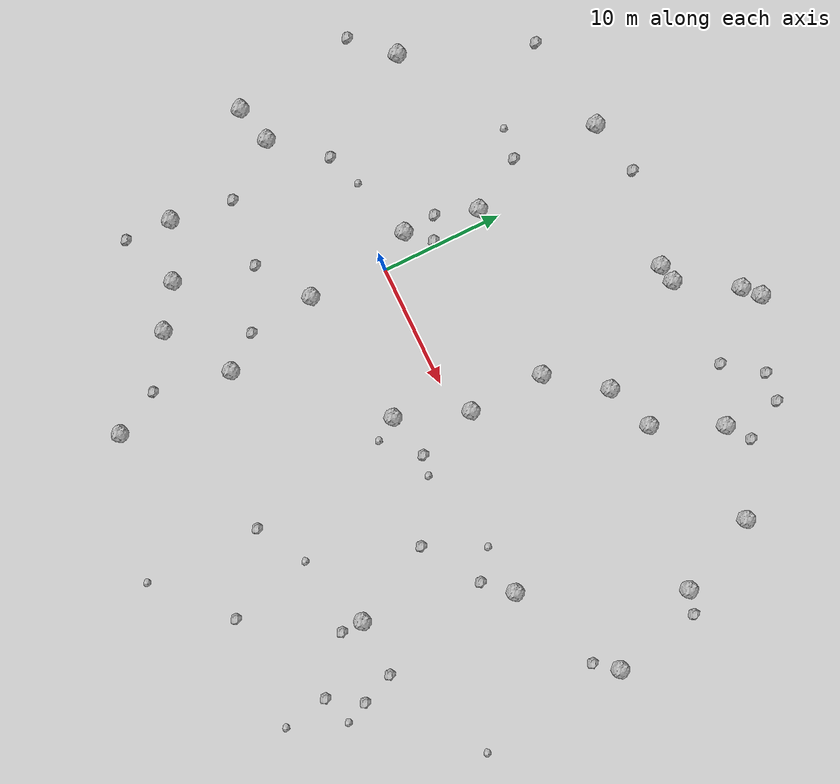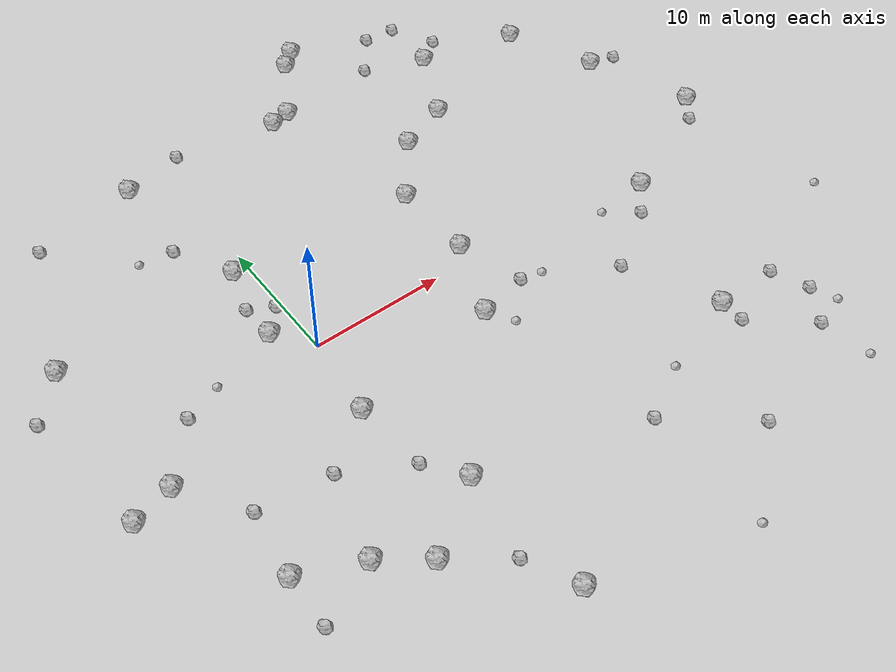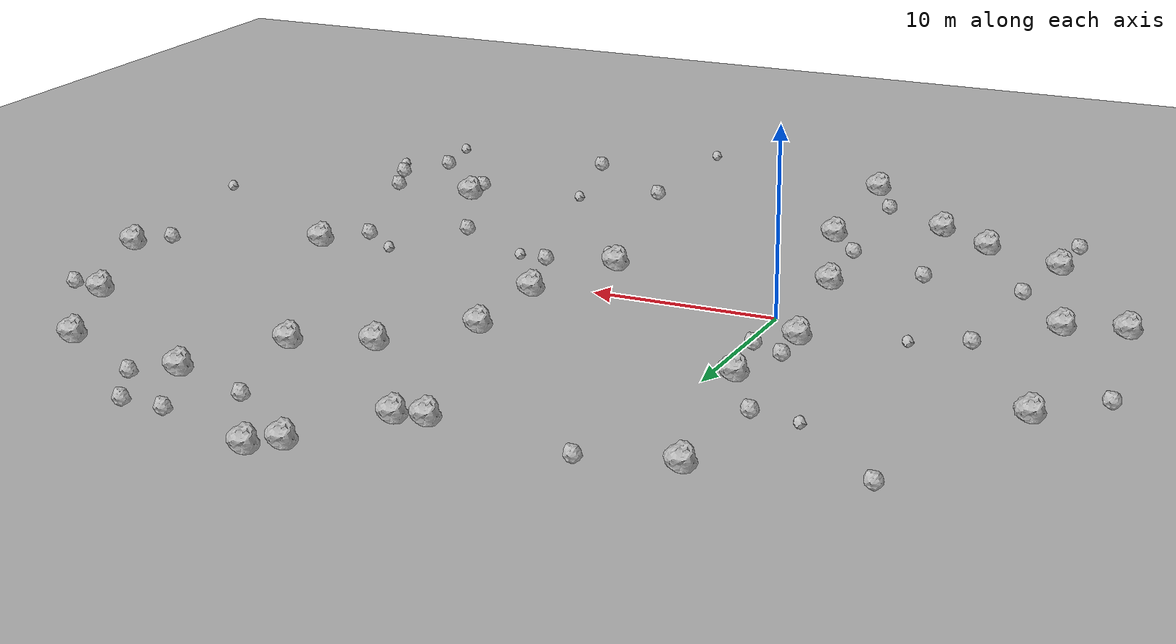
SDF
<sdf version="1.6">
 <world name="default">
  <include><uri>model://custom_ground</uri></include>
  <include><uri>model://sun</uri></include>
  <model name="rock1_0_0">
   <include><uri>model://rock1</uri><pose>10.821940397045196 -4.523592340949065 0.5 0 0 0</pose></include>
  </model>
  <model name="rock1_0_1">
   <include><uri>model://rock1</uri><pose>-3.2612408736402863 -17.877055829082632 0.5 0 0 0</pose></include>
  </model>
  <model name="rock1_0_2">
   <include><uri>model://rock1</uri><pose>20.236968406302218 13.408503228176016 0.5 0 0 0</pose></include>
  </model>
  <model name="rock1_0_3">
   <include><uri>model://rock1</uri><pose>13.055684413217122 1.251064031974046 0.5 0 0 0</pose></include>
  </model>
  <model name="rock1_0_4">
   <include><uri>model://rock1</uri><pose>-14.993761156548043 8.35029182055132 0.5 0 0 0</pose></include>
  </model>
  <model name="rock1_0_5">
   <include><uri>model://rock1</uri><pose>22.893345178660446 18.857827854576698 0.5 0 0 0</pose></include>
  </model>
  <model name="rock1_0_6">
   <include><uri>model://rock1</uri><pose>-16.49643778831015 -4.786456749395558 0.5 0 0 0</pose></include>
  </model>
  <model name="rock1_0_7">
   <include><uri>model://rock1</uri><pose>27.428805030857156 -1.8469164987717654 0.5 0 0 0</pose></include>
  </model>
  <model name="rock1_0_8">
   <include><uri>model://rock1</uri><pose>30.23622032656735 17.038255822152195 0.5 0 0 0</pose></include>
  </model>
  <model name="rock1_0_9">
   <include><uri>model://rock1</uri><pose>9.271307849004444 19.789888029220357 0.5 0 0 0</pose></include>
  </model>
  <model name="rock1_0_10">
   <include><uri>model://rock1</uri><pose>-13.399878486173494 -3.965482055158926 0.5 0 0 0</pose></include>
  </model>
  <model name="rock1_0_11">
   <include><uri>model://rock1</uri><pose>-2.0094451745667463 2.6641377313370356 0.5 0 0 0</pose></include>
  </model>
  <model name="rock1_0_12">
   <include><uri>model://rock1</uri><pose>14.844141967051776 25.91319315444226 0.5 0 0 0</pose></include>
  </model>
  <model name="rock1_0_13">
   <include><uri>model://rock1</uri><pose>16.30258723649783 11.911439262818696 0.5 0 0 0</pose></include>
  </model>
  <model name="rock1_0_14">
   <include><uri>model://rock1</uri><pose>-10.96123594212285 -13.592383131722528 0.5 0 0 0</pose></include>
  </model>
  <model name="rock1_0_15">
   <include><uri>model://rock1</uri><pose>2.5782642925681003 -24.47634214251631 0.5 0 0 0</pose></include>
  </model>
  <model name="rock1_0_16">
   <include><uri>model://rock1</uri><pose>13.62231153825946 24.772420155391117 0.5 0 0 0</pose></include>
  </model>
  <model name="rock1_0_17">
   <include><uri>model://rock1</uri><pose>-6.485202266334738 -15.522939422022354 0.5 0 0 0</pose></include>
  </model>
  <model name="rock1_0_18">
   <include><uri>model://rock1</uri><pose>33.22430456099622 10.549350398413331 0.5 0 0 0</pose></include>
  </model>
  <model name="rock1_0_19">
   <include><uri>model://rock1</uri><pose>1.926757771120748 -14.44521124996305 0.5 0 0 0</pose></include>
  </model>
  <model name="rock1_0_20">
   <include><uri>model://rock1</uri><pose>24.23321447496639 -13.671661066058753 0.5 0 0 0</pose></include>
  </model>
  <model name="rock1_0_21">
   <include><uri>model://rock1</uri><pose>-0.6063811236792667 -6.210338863403674 0.5 0 0 0</pose></include>
  </model>
  <model name="rock1_0_22">
   <include><uri>model://rock1</uri><pose>-3.057630912245429 20.08588613857522 0.5 0 0 0</pose></include>
  </model>
  <model name="rock1_0_23">
   <include><uri>model://rock1</uri><pose>10.778273023344632 20.104986298174893 0.5 0 0 0</pose></include>
  </model>
  <model name="rock1_0_24">
   <include><uri>model://rock1</uri><pose>12.91419316591329 7.546934526845838 0.5 0 0 0</pose></include>
  </model>
  <model name="rock1_0_25">
   <include><uri>model://rock1</uri><pose>36.48425089388974 2.9341699619062283 0.5 0 0 0</pose></include>
  </model>
  <model name="rock1_0_26">
   <include><uri>model://rock1</uri><pose>-1.070327424108413 8.771474004652525 0.5 0 0 0</pose></include>
  </model>
  <model name="rock2_0_0">
   <include><uri>model://rock2</uri><pose>-11.100777580453267 18.68692077397595 0.3 0 0 0</pose></include>
  </model>
  <model name="rock2_0_1">
   <include><uri>model://rock2</uri><pose>24.284246529631993 -15.50590167762884 0.3 0 0 0</pose></include>
  </model>
  <model name="rock2_0_2">
   <include><uri>model://rock2</uri><pose>-0.1229574149473791 -11.676853589150621 0.3 0 0 0</pose></include>
  </model>
  <model name="rock2_0_3">
   <include><uri>model://rock2</uri><pose>19.70893785184542 -22.58963252696951 0.3 0 0 0</pose></include>
  </model>
  <model name="rock2_0_4">
   <include><uri>model://rock2</uri><pose>28.40204740845686 -18.947165313035512 0.3 0 0 0</pose></include>
  </model>
  <model name="rock2_0_5">
   <include><uri>model://rock2</uri><pose>-0.42238981190447333 4.475533588720168 0.3 0 0 0</pose></include>
  </model>
  <model name="rock2_0_6">
   <include><uri>model://rock2</uri><pose>14.524118540050296 -3.6676030570950644 0.3 0 0 0</pose></include>
  </model>
  <model name="rock2_0_7">
   <include><uri>model://rock2</uri><pose>24.694777346149237 20.227979092687782 0.3 0 0 0</pose></include>
  </model>
  <model name="rock2_0_8">
   <include><uri>model://rock2</uri><pose>14.02107016862658 -17.991570410969047 0.3 0 0 0</pose></include>
  </model>
  <model name="rock2_0_9">
   <include><uri>model://rock2</uri><pose>35.12982947613083 10.073821226563695 0.3 0 0 0</pose></include>
  </model>
  <model name="rock2_0_10">
   <include><uri>model://rock2</uri><pose>-11.11831359696945 -17.454144920927696 0.3 0 0 0</pose></include>
  </model>
  <model name="rock2_0_11">
   <include><uri>model://rock2</uri><pose>-4.83486660691225 -9.103818379895387 0.3 0 0 0</pose></include>
  </model>
  <model name="rock2_0_12">
   <include><uri>model://rock2</uri><pose>1.456762340356498 21.164740214981585 0.3 0 0 0</pose></include>
  </model>
  <model name="rock2_0_13">
   <include><uri>model://rock2</uri><pose>22.890488084798378 23.395814532811507 0.3 0 0 0</pose></include>
  </model>
  <model name="rock2_0_14">
   <include><uri>model://rock2</uri><pose>20.93408075718132 -6.95670406874633 0.3 0 0 0</pose></include>
  </model>
  <model name="rock2_0_15">
   <include><uri>model://rock2</uri><pose>-17.99418645703656 5.338835887511522 0.3 0 0 0</pose></include>
  </model>
  <model name="rock2_0_16">
   <include><uri>model://rock2</uri><pose>28.94393933002837 -13.570474452881985 0.3 0 0 0</pose></include>
  </model>
  <model name="rock2_0_17">
   <include><uri>model://rock2</uri><pose>20.508117045433238 23.598601458643635 0.3 0 0 0</pose></include>
  </model>
  <model name="rock2_0_18">
   <include><uri>model://rock2</uri><pose>-9.99749460904918 0.003385052644336639 0.3 0 0 0</pose></include>
  </model>
  <model name="rock2_0_19">
   <include><uri>model://rock2</uri><pose>-2.221349582493527 5.4332307687127255 0.3 0 0 0</pose></include>
  </model>
  <model name="rock2_0_20">
   <include><uri>model://rock2</uri><pose>25.516365423611937 -3.961672037085439 0.3 0 0 0</pose></include>
  </model>
  <model name="rock2_0_21">
   <include><uri>model://rock2</uri><pose>30.066282157324835 -16.27242106847402 0.3 0 0 0</pose></include>
  </model>
  <model name="rock2_0_22">
   <include><uri>model://rock2</uri><pose>0.6948006825252477 -20.728045821858828 0.3 0 0 0</pose></include>
  </model>
  <model name="rock2_0_23">
   <include><uri>model://rock2</uri><pose>18.288720072384294 20.662845561977413 0.3 0 0 0</pose></include>
  </model>
  <model name="rock2_0_24">
   <include><uri>model://rock2</uri><pose>-3.512811776391864 13.07273586167085 0.3 0 0 0</pose></include>
  </model>
  <model name="rock2_0_25">
   <include><uri>model://rock2</uri><pose>-10.30639033041444 -8.468821826699852 0.3 0 0 0</pose></include>
  </model>
  <model name="rock2_0_26">
   <include><uri>model://rock2</uri><pose>35.098928516886154 1.1962896216791954 0.3 0 0 0</pose></include>
  </model>
  <model name="rock3_0_0">
   <include><uri>model://rock3</uri><pose>14.063888080929665 -27.713126321143257 0.2 0 0 0</pose></include>
  </model>
  <model name="rock3_0_1">
   <include><uri>model://rock3</uri><pose>-3.4006684733511214 -17.73215396875679 0.2 0 0 0</pose></include>
  </model>
  <model name="rock3_0_2">
   <include><uri>model://rock3</uri><pose>16.170575595316578 -4.038658240653334 0.2 0 0 0</pose></include>
  </model>
  <model name="rock3_0_3">
   <include><uri>model://rock3</uri><pose>-7.171433113908153 1.0318849061043736 0.2 0 0 0</pose></include>
  </model>
  <model name="rock3_0_4">
   <include><uri>model://rock3</uri><pose>30.899966138777103 -18.169410742821878 0.2 0 0 0</pose></include>
  </model>
  <model name="rock3_0_5">
   <include><uri>model://rock3</uri><pose>-6.045631681822741 13.400515126239199 0.2 0 0 0</pose></include>
  </model>
  <model name="rock3_0_6">
   <include><uri>model://rock3</uri><pose>23.27176516290787 -2.248546880817244 0.2 0 0 0</pose></include>
  </model>
  <model name="rock3_0_7">
   <include><uri>model://rock3</uri><pose>11.96648294721897 -6.367393209135756 0.2 0 0 0</pose></include>
  </model>
  <model name="rock3_0_8">
   <include><uri>model://rock3</uri><pose>37.81080736499298 -9.366841322463483 0.2 0 0 0</pose></include>
  </model>
  <model name="rock3_0_9">
   <include><uri>model://rock3</uri><pose>18.002572839908836 -15.740524363678363 0.2 0 0 0</pose></include>
  </model>
  <model name="rock3_0_10">
   <include><uri>model://rock3</uri><pose>29.111020803020907 -22.779593765171153 0.2 0 0 0</pose></include>
  </model>
 </world>
</sdf>
